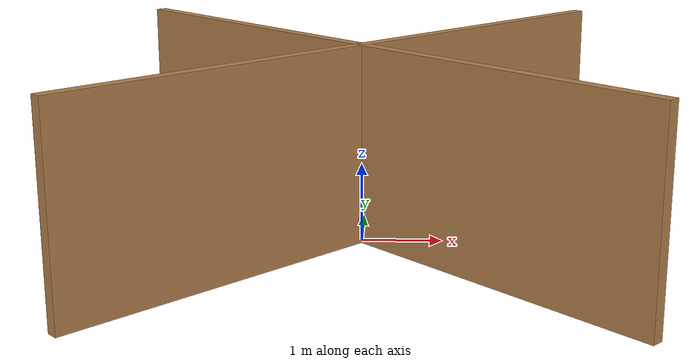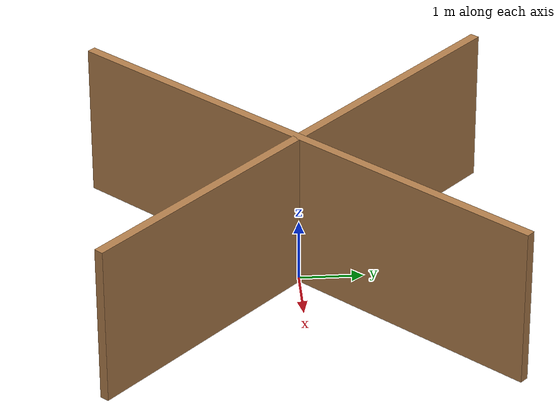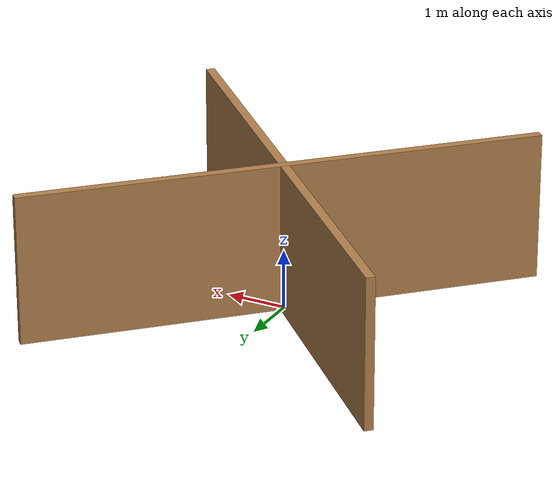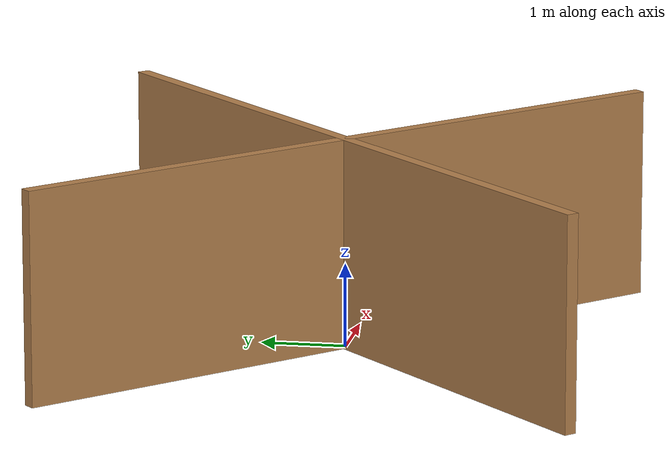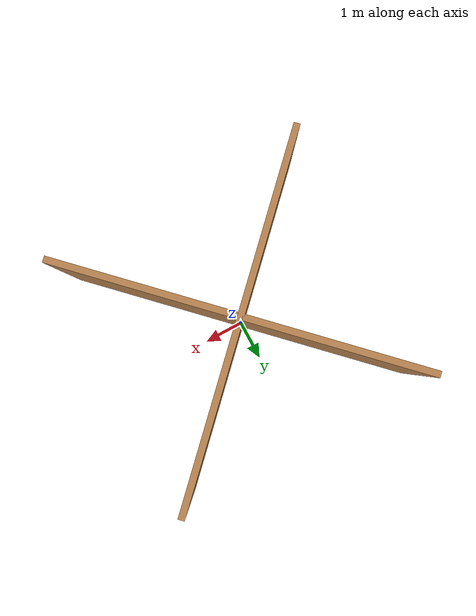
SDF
<?xml version='1.0'?>
<sdf version='1.5'>
  <model name='obs3'>
    <pose frame=''>0 0 0 0 -0 0</pose>
    <link name='Wall_0'>
      <collision name='Wall_0_Collision'>
        <geometry>
          <box>
            <size>8.63528 0.15 2.5</size>
          </box>
        </geometry>
        <pose frame=''>0 0 1.25 0 -0 0</pose>
      </collision>
      <visual name='Wall_0_Visual'>
        <pose frame=''>0 0 1.25 0 -0 0</pose>
        <geometry>
          <box>
            <size>8.63528 0.15 2.5</size>
          </box>
        </geometry>
        <material>
          <script>
            <uri>file://media/materials/scripts/gazebo.material</uri>
            <name>Gazebo/Wood</name>
          </script>
          <ambient>1 1 1 1</ambient>
        </material>
      </visual>
      <pose frame=''>0 0 0 0 0 -0.785398</pose>
    </link>
    <link name='Wall_2'>
      <collision name='Wall_2_Collision'>
        <geometry>
          <box>
            <size>8.63528 0.15 2.5</size>
          </box>
        </geometry>
        <pose frame=''>0 0 1.25 0 -0 0</pose>
      </collision>
      <visual name='Wall_2_Visual'>
        <pose frame=''>0 0 1.25 0 -0 0</pose>
        <geometry>
          <box>
            <size>8.63528 0.15 2.5</size>
          </box>
        </geometry>
        <material>
          <script>
            <uri>file://media/materials/scripts/gazebo.material</uri>
            <name>Gazebo/Wood</name>
          </script>
          <ambient>1 1 1 1</ambient>
        </material>
      </visual>
      <pose frame=''>0 0 0 0 0 -2.35619</pose>
    </link>
    <static>1</static>
  </model>
</sdf>
